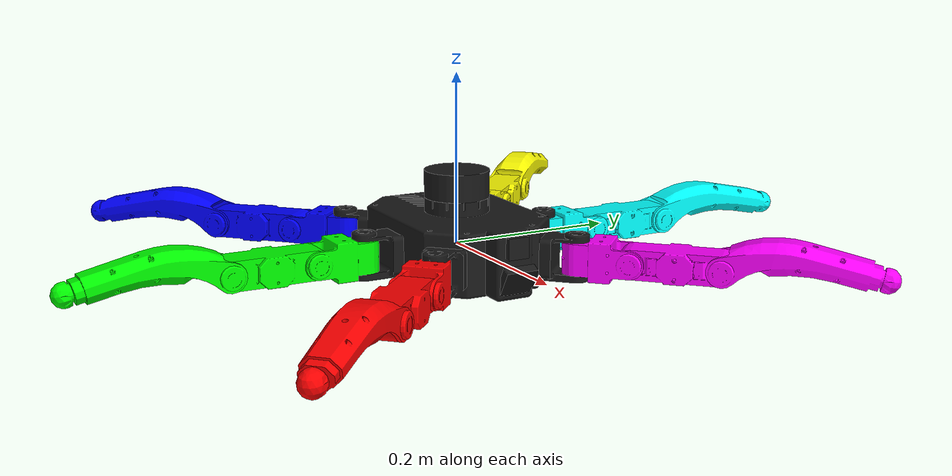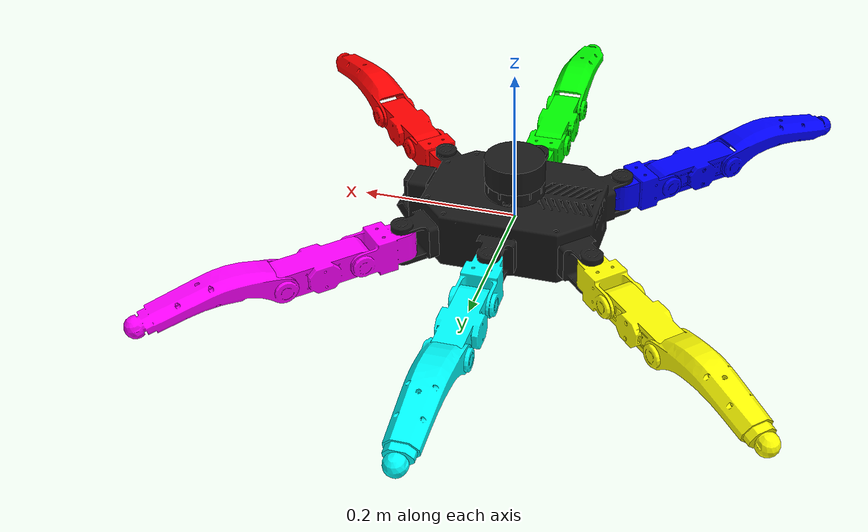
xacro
<robot xmlns:xacro="http://ros.org/wiki/xacro" name="hexapod">

  <xacro:arg name="controllers_file" default=""/>
  <!-- Waveshare ST3215 at 12 V: 2.94 N·m stall torque, 0.222 s/60° no-load speed -->
  <xacro:property name="servo_effort" value="2.94"/>
  <xacro:property name="servo_velocity" value="4.7"/>
  <!-- Femur range from the CAD meshes: raising it hits the coxa bracket at -100 deg, lowering it
       with the knee folded puts the tibia into the body at +86 deg. Both ~10 deg inside contact. -->
  <xacro:property name="femur_lower" value="-1.6"/>
  <xacro:property name="femur_upper" value="1.4"/>
  <xacro:property name="tibia_lower" value="-0.78"/>
  <xacro:property name="tibia_upper" value="2.63"/>
  <xacro:arg name="front_depth_width" default="640"/>
  <xacro:arg name="front_depth_height" default="480"/>
  <xacro:arg name="front_depth_rate" default="8"/>

  <!-- ================= CONSTANTS ================= -->
  <!-- Hexapod_V6.1, as in hexapod.urdf.xacro (base_link on the hip plane) -->
  <xacro:property name="coxa_length" value="0.063"/>
  <xacro:property name="femur_length" value="0.1"/>
  <!-- Straight line from the knee to the bottom of the foot; the real tibia curves outwards -->
  <xacro:property name="tibia_length" value="0.186"/>
  <xacro:property name="middle_leg_y" value="0.11836"/>
  <xacro:property name="corner_leg_x" value="0.11916"/>
  <xacro:property name="corner_leg_y" value="0.08952"/>

  <!-- Body 220 mm long and 161 mm wide, 72 mm tall with the lid, its base 33.85 mm below the hips -->
  <xacro:property name="body_length" value="0.22"/>
  <xacro:property name="body_width" value="0.161"/>
  <xacro:property name="body_height" value="0.072"/>
  <xacro:property name="body_z" value="${body_height / 2 - 0.03385}"/>

  <xacro:property name="coxa_width" value="0.054"/>
  <xacro:property name="coxa_height" value="0.045"/>

  <xacro:property name="femur_radius" value="0.025"/>
  <xacro:property name="tibia_radius" value="0.017"/>

  <xacro:property name="cscale" value="0.95"/>

  <!-- Visuals are the real robot's meshes (as in hexapod.urdf.xacro); collisions stay simple shapes -->
  <xacro:property name="mesh_scale" value="0.001 0.001 0.001"/>

  <!-- Rubber foot at the tibia tip; its bottom sits at tibia_length so the IK leg length is unchanged -->
  <xacro:property name="foot_radius" value="0.014"/>
  <xacro:property name="foot_friction" value="1.5"/>

  <!-- Masses and inertias from the CAD (scripts/mass_properties.py) -->
  <xacro:include filename="$(find hexapod_description)/urdf/hexapod.inertials.xacro"/>

  <!-- ================= MATERIALS ================= -->
  <material name="black"><color rgba="0.1 0.1 0.1 1"/></material>
  <material name="red"><color rgba="1 0 0 1"/></material>
  <material name="green"><color rgba="0 1 0 1"/></material>
  <material name="blue"><color rgba="0 0 1 1"/></material>
  <material name="yellow"><color rgba="1 1 0 1"/></material>
  <material name="cyan"><color rgba="0 1 1 1"/></material>
  <material name="magenta"><color rgba="1 0 1 1"/></material>

  <!-- ================= BASE ================= -->
  <link name="base_link">
    <visual>
      <geometry>
        <mesh filename="package://hexapod_description/meshes/body.stl" scale="${mesh_scale}"/>
      </geometry>
      <material name="black"/>
    </visual>
    <collision>
      <origin xyz="0 0 ${body_z}"/>
      <geometry>
        <box size="${body_length} ${body_width} ${body_height}"/>
      </geometry>
    </collision>
    <xacro:hexapod_base_inertial/>
  </link>

<!-- ================= LEG LINKS ================= -->
<!-- side: left or right, the left legs being mirror images of the right -->
<xacro:macro name="leg" params="name side x_offset y_offset yaw colour">

  <!-- COXA -->
  <link name="${name}_coxa">
    <visual>
      <geometry>
        <mesh filename="package://hexapod_description/meshes/coxa_${side}.stl" scale="${mesh_scale}"/>
      </geometry>
      <material name="${colour}"/>
    </visual>
    <collision>
      <origin xyz="${coxa_length/2} 0 0" rpy="0 0 0"/>
      <geometry>
        <box size="${coxa_length*cscale} ${coxa_width*cscale} ${coxa_height*cscale}"/>
      </geometry>
    </collision>
    <xacro:hexapod_leg_inertial link="coxa" side="${side}"/>
  </link>

  <!-- FEMUR -->
  <link name="${name}_femur">
    <visual>
      <geometry>
        <mesh filename="package://hexapod_description/meshes/femur_${side}.stl" scale="${mesh_scale}"/>
      </geometry>
      <material name="${colour}"/>
    </visual>
    <collision>
      <origin xyz="${femur_length/2} 0 0" rpy="0 -1.5708 0"/>
      <geometry>
        <cylinder length="${femur_length*cscale}" radius="${femur_radius*cscale}"/>
      </geometry>
    </collision>
    <xacro:hexapod_leg_inertial link="femur" side="${side}"/>
  </link>

  <!-- TIBIA -->
  <link name="${name}_tibia">
    <visual>
      <geometry>
        <mesh filename="package://hexapod_description/meshes/tibia_${side}.stl" scale="${mesh_scale}"/>
      </geometry>
      <material name="${colour}"/>
    </visual>
    <!-- Foot sphere. Left unnamed: the URDF converter only applies mu1/mu2 to collisions named after the link -->
    <collision>
      <origin xyz="${tibia_length - foot_radius} 0 0"/>
      <geometry>
        <sphere radius="${foot_radius}"/>
      </geometry>
    </collision>
    <collision>
      <origin xyz="${tibia_length/2} 0 0" rpy="0 -1.5708 0"/>
      <geometry>
        <cylinder length="${tibia_length*cscale}" radius="${tibia_radius*cscale}"/>
      </geometry>
    </collision>
    <xacro:hexapod_leg_inertial link="tibia" side="${side}"/>
  </link>

  <gazebo reference="${name}_tibia">
    <mu1>${foot_friction}</mu1>
    <mu2>${foot_friction}</mu2>
  </gazebo>

  <!-- COXA JOINT -->
  <joint name="${name}_coxa_joint" type="revolute">
    <parent link="base_link"/>
    <child link="${name}_coxa"/>
    <origin xyz="${x_offset} ${y_offset} 0" rpy="0 0 ${yaw}"/>
    <axis xyz="0 0 1"/>
    <limit lower="-1.57" upper="1.57" effort="${servo_effort}" velocity="${servo_velocity}"/>
  </joint>

  <!-- FEMUR JOINT -->
  <joint name="${name}_femur_joint" type="revolute">
    <parent link="${name}_coxa"/>
    <child link="${name}_femur"/>
    <origin xyz="${coxa_length} 0 0" rpy="0 0 0"/>
    <axis xyz="0 1 0"/>
    <limit lower="${femur_lower}" upper="${femur_upper}" effort="${servo_effort}" velocity="${servo_velocity}"/>
  </joint>

  <!-- TIBIA JOINT -->
  <joint name="${name}_tibia_joint" type="revolute">
    <parent link="${name}_femur"/>
    <child link="${name}_tibia"/>
    <origin xyz="${femur_length} 0 0" rpy="0 0 0"/>  <!-- 0: in line with the femur -->
    <axis xyz="0 1 0"/>
    <limit lower="${tibia_lower}" upper="${tibia_upper}" effort="${servo_effort}" velocity="${servo_velocity}"/>
  </joint>

  <!-- COXA TRANSMISSION -->
  <transmission name="${name}_coxa_trans">
    <type>transmission_interface/SimpleTransmission</type>
    <joint name="${name}_coxa_joint">
      <hardwareInterface>PositionJointInterface</hardwareInterface>
    </joint>
    <actuator name="${name}_coxa_motor">
      <hardwareInterface>PositionJointInterface</hardwareInterface>
      <mechanicalReduction>1</mechanicalReduction>
    </actuator>
  </transmission>

  <!-- FEMUR TRANSMISSION -->
  <transmission name="${name}_femur_trans">
    <type>transmission_interface/SimpleTransmission</type>
    <joint name="${name}_femur_joint">
      <hardwareInterface>PositionJointInterface</hardwareInterface>
    </joint>
    <actuator name="${name}_femur_motor">
      <hardwareInterface>PositionJointInterface</hardwareInterface>
      <mechanicalReduction>1</mechanicalReduction>
    </actuator>
  </transmission>

  <!-- TIBIA TRANSMISSION -->
  <transmission name="${name}_tibia_trans">
    <type>transmission_interface/SimpleTransmission</type>
    <joint name="${name}_tibia_joint">
      <hardwareInterface>PositionJointInterface</hardwareInterface>
    </joint>
    <actuator name="${name}_tibia_motor">
      <hardwareInterface>PositionJointInterface</hardwareInterface>
      <mechanicalReduction>1</mechanicalReduction>
    </actuator>
  </transmission>

</xacro:macro>

  <!-- ================= LEGS ================= -->
  <!-- Body frame follows REP 103: +x forward, +y left, +z up -->

  <!-- Front right -->
  <xacro:leg name="leg1" side="right" x_offset="${corner_leg_x}" y_offset="${-corner_leg_y}" yaw="${-pi / 4}" colour="red"/>

  <!-- Middle right -->
  <xacro:leg name="leg2" side="right" x_offset="0" y_offset="${-middle_leg_y}" yaw="${-pi / 2}" colour="green"/>

  <!-- Rear right -->
  <xacro:leg name="leg3" side="right" x_offset="${-corner_leg_x}" y_offset="${-corner_leg_y}" yaw="${-3 * pi / 4}" colour="blue"/>

  <!-- Rear left -->
  <xacro:leg name="leg4" side="left" x_offset="${-corner_leg_x}" y_offset="${corner_leg_y}" yaw="${3 * pi / 4}" colour="yellow"/>

  <!-- Middle left -->
  <xacro:leg name="leg5" side="left" x_offset="0" y_offset="${middle_leg_y}" yaw="${pi / 2}" colour="cyan"/>

  <!-- Front left -->
  <xacro:leg name="leg6" side="left" x_offset="${corner_leg_x}" y_offset="${corner_leg_y}" yaw="${pi / 4}" colour="magenta"/>

  <!-- ================= SENSORS ================= -->

  <gazebo reference="camera_link">
  <sensor name="camera" type="camera">
    <always_on>true</always_on>
    <update_rate>15</update_rate>
    <camera>
      <horizontal_fov>1.152</horizontal_fov>  <!-- Pi Camera Module 3 standard lens: 66 deg -->
      <image>
        <width>640</width>
        <height>360</height>
        <format>R8G8B8</format>
      </image>
      <clip>
        <near>0.01</near>
        <far>100</far>
      </clip>
    </camera>
    <topic>/camera/image</topic>
    <gz_frame_id>camera_link</gz_frame_id>
  </sensor>
</gazebo>

<gazebo reference="front_depth_camera_link">
  <sensor name="front_depth_camera" type="depth_camera">
    <always_on>true</always_on>
    <update_rate>$(arg front_depth_rate)</update_rate>
    <camera>
      <horizontal_fov>1.021</horizontal_fov>  <!-- Arducam ToF: 70 deg diagonal = 58.5 deg horizontal -->
      <image>
        <width>$(arg front_depth_width)</width>
        <height>$(arg front_depth_height)</height>
        <format>R8G8B8</format>
      </image>
      <clip>
        <near>0.1</near>
        <far>4.0</far>    <!-- far mode -->
      </clip>
    </camera>
    <topic>/front_depth</topic>
    <gz_frame_id>front_depth_camera_link</gz_frame_id>
  </sensor>
</gazebo>

<link name="imu_link">
  <visual>
    <geometry><box size="0.015 0.015 0.005"/></geometry>
    <material name="green"/>
  </visual>
  <collision>
    <geometry><box size="0.015 0.015 0.005"/></geometry>
  </collision>
  <!-- Its mass is in base_link's inertial (hexapod.inertials.xacro); fixed joints are merged into base_link -->
  <inertial>
    <mass value="0.001"/>
    <inertia ixx="1e-8" ixy="0" ixz="0" iyy="1e-8" iyz="0" izz="1e-8"/>
  </inertial>
</link>

<joint name="imu_joint" type="fixed">
  <parent link="base_link"/>
  <child link="imu_link"/>
  <origin xyz="0.0 0.0 0.03" rpy="0 0 0"/>
</joint>

<gazebo reference="imu_link">
  <sensor name="imu_sensor" type="imu">
    <always_on>true</always_on>
    <update_rate>1000</update_rate>
    <topic>/imu</topic>
    <gz_frame_id>imu_link</gz_frame_id>
    <imu>
      <angular_velocity>
        <x><noise type="gaussian"><mean>0.0</mean><stddev>0.002</stddev></noise></x>
        <y><noise type="gaussian"><mean>0.0</mean><stddev>0.002</stddev></noise></y>
        <z><noise type="gaussian"><mean>0.0</mean><stddev>0.002</stddev></noise></z>
      </angular_velocity>
      <linear_acceleration>
        <x><noise type="gaussian"><mean>0.0</mean><stddev>0.02</stddev></noise></x>
        <y><noise type="gaussian"><mean>0.0</mean><stddev>0.02</stddev></noise></y>
        <z><noise type="gaussian"><mean>0.0</mean><stddev>0.02</stddev></noise></z>
      </linear_acceleration>
    </imu>
  </sensor>
</gazebo>

<gazebo reference="imu_link">
  <sensor name="mag_sensor" type="magnetometer">
    <always_on>true</always_on>
    <update_rate>50</update_rate>
    <topic>/imu/mag</topic>
    <gz_frame_id>imu_link</gz_frame_id>
  </sensor>
</gazebo>

<xacro:include filename="$(find hexapod_description)/urdf/hexapod.lidar.xacro"/>
<xacro:hexapod_lidar/>
<xacro:include filename="$(find hexapod_description)/urdf/hexapod.cameras.xacro"/>
<xacro:hexapod_cameras/>

<gazebo reference="lidar_link">
  <sensor name="lidar" type="gpu_lidar">
    <always_on>true</always_on>
    <!-- RPLIDAR A2M12: 10 Hz, 16 kHz sampling (0.225 deg steps), 0.2-12 m -->
    <update_rate>10</update_rate>
    <lidar>
      <scan>
        <horizontal>
          <samples>1600</samples>
          <resolution>1</resolution>
          <min_angle>-3.14159</min_angle>
          <max_angle>3.14159</max_angle>
        </horizontal>
        <vertical>
          <samples>1</samples>        <!-- 1 = 2D lidar, increase for 3D -->
          <min_angle>0</min_angle>
          <max_angle>0</max_angle>
        </vertical>
      </scan>
      <range>
        <min>0.2</min>
        <max>12.0</max>
        <resolution>0.01</resolution>
      </range>
      <noise>
        <type>gaussian</type>
        <mean>0.0</mean>
        <stddev>0.01</stddev>
      </noise>
    </lidar>
    <topic>/lidar/scan</topic>
    <gz_frame_id>lidar_link</gz_frame_id>
  </sensor>
</gazebo>

  <!-- ================= ROS2 CONTROL ================= -->
  <xacro:include filename="$(find hexapod_description)/urdf/hexapod.ros2_control.xacro"/>
  <xacro:hexapod_ros2_control hardware="gazebo"/>

  <gazebo>
    <plugin name="gz_ros2_control::GazeboSimROS2ControlPlugin" filename="libgz_ros2_control-system.so">
      <parameters>$(arg controllers_file)</parameters>
    </plugin>
  </gazebo>

  <!-- The robot's true pose, for scoring test runs (scenario_runner.py) against odometry -->
  <gazebo>
    <plugin name="gz::sim::systems::OdometryPublisher" filename="gz-sim-odometry-publisher-system">
      <odom_frame>world</odom_frame>
      <robot_base_frame>base_link</robot_base_frame>
      <odom_topic>/ground_truth/odom</odom_topic>
      <tf_topic>/ground_truth/tf</tf_topic>
      <dimensions>3</dimensions>
      <odom_publish_frequency>50</odom_publish_frequency>
    </plugin>
  </gazebo>

</robot>

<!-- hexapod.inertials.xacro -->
<!-- Generated by scripts/mass_properties.py from Hexapod_V6.1.step, edit that instead.
     Whole robot 3.323 kg. Printed parts are at 60% of solid until weighed. -->
<robot xmlns:xacro="http://ros.org/wiki/xacro">

  <xacro:macro name="hexapod_base_inertial">
    <inertial>
      <mass value="1.1082"/>
      <origin xyz="-0.00433 0.00009 0.00993"/>
      <inertia ixx="3.4133e-03" ixy="-1.1081e-06" ixz="-5.7272e-05" iyy="5.8450e-03" iyz="6.0138e-08" izz="7.2937e-03"/>
    </inertial>
  </xacro:macro>

  <!-- link: coxa, femur or tibia; side: left or right -->
  <xacro:macro name="hexapod_leg_inertial" params="link side">
    <xacro:if value="${link == 'coxa' and side == 'left'}">
      <inertial>
        <mass value="0.0934"/>
        <origin xyz="0.02018 0.00006 -0.00074"/>
        <inertia ixx="2.3501e-05" ixy="6.6404e-10" ixz="3.6137e-07" iyy="4.3357e-05" iyz="1.7523e-08" izz="4.4608e-05"/>
      </inertial>
    </xacro:if>
    <xacro:if value="${link == 'coxa' and side == 'right'}">
      <inertial>
        <mass value="0.0934"/>
        <origin xyz="0.02018 -0.00006 -0.00074"/>
        <inertia ixx="2.3501e-05" ixy="-6.6404e-10" ixz="3.6137e-07" iyy="4.3357e-05" iyz="-1.7523e-08" izz="4.4608e-05"/>
      </inertial>
    </xacro:if>
    <xacro:if value="${link == 'femur' and side == 'left'}">
      <inertial>
        <mass value="0.1724"/>
        <origin xyz="0.05000 0.00002 -0.00000"/>
        <inertia ixx="3.3923e-05" ixy="-4.3970e-14" ixz="-4.0729e-07" iyy="2.3291e-04" iyz="-2.4257e-14" izz="2.4153e-04"/>
      </inertial>
    </xacro:if>
    <xacro:if value="${link == 'femur' and side == 'right'}">
      <inertial>
        <mass value="0.1724"/>
        <origin xyz="0.05000 -0.00002 -0.00000"/>
        <inertia ixx="3.3923e-05" ixy="4.3970e-14" ixz="-4.0729e-07" iyy="2.3291e-04" iyz="2.4257e-14" izz="2.4153e-04"/>
      </inertial>
    </xacro:if>
    <xacro:if value="${link == 'tibia' and side == 'left'}">
      <inertial>
        <mass value="0.1034"/>
        <origin xyz="0.07831 -0.00000 0.01279"/>
        <inertia ixx="2.7891e-05" ixy="4.6243e-10" ixz="1.3841e-05" iyy="2.3494e-04" iyz="-2.0572e-10" izz="2.3960e-04"/>
      </inertial>
    </xacro:if>
    <xacro:if value="${link == 'tibia' and side == 'right'}">
      <inertial>
        <mass value="0.1034"/>
        <origin xyz="0.07831 0.00000 0.01279"/>
        <inertia ixx="2.7891e-05" ixy="-4.6243e-10" ixz="1.3841e-05" iyy="2.3494e-04" iyz="2.0572e-10" izz="2.3960e-04"/>
      </inertial>
    </xacro:if>
  </xacro:macro>

</robot>

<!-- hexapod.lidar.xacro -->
<robot xmlns:xacro="http://ros.org/wiki/xacro">

  <!--
    RPLIDAR A2M12 mount, shared by the real and Gazebo models so they stay in the same place.
    Placed as on the V6.1 body (Hexapod_V6.1.step).
  -->
  <xacro:property name="lidar_x" value="0.0"/>
  <xacro:property name="lidar_y" value="0.0"/>
  <xacro:property name="lidar_z" value="0.067"/>
  <xacro:property name="lidar_radius" value="0.038"/>
  <xacro:property name="lidar_height" value="0.041"/>

  <xacro:macro name="hexapod_lidar">
    <link name="lidar_link">
      <visual>
        <geometry><cylinder length="${lidar_height}" radius="${lidar_radius}"/></geometry>
        <material name="black"/>
      </visual>
      <collision>
        <geometry><cylinder length="${lidar_height}" radius="${lidar_radius}"/></geometry>
      </collision>
      <!-- Its mass is in base_link's inertial (hexapod.inertials.xacro); fixed joints are merged into base_link -->
      <inertial>
        <mass value="0.001"/>
        <inertia ixx="1e-8" ixy="0" ixz="0" iyy="1e-8" iyz="0" izz="1e-8"/>
      </inertial>
    </link>

    <joint name="lidar_joint" type="fixed">
      <parent link="base_link"/>
      <child link="lidar_link"/>
      <origin xyz="${lidar_x} ${lidar_y} ${lidar_z}" rpy="0 0 0"/>
    </joint>
  </xacro:macro>

</robot>

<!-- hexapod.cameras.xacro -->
<robot xmlns:xacro="http://ros.org/wiki/xacro">

  <xacro:property name="camera_x" value="0.138"/>        <!-- front of the camera pod -->
  <xacro:property name="tof_z" value="-0.0124"/>
  <xacro:property name="tof_pitch" value="${radians(30)}"/>
  <xacro:property name="picam_z" value="0.0257"/>
  <xacro:property name="picam_pitch" value="0.0"/>

  <xacro:macro name="hexapod_cameras">
    <link name="front_depth_camera_link">
      <visual>
        <geometry><box size="0.01 0.038 0.038"/></geometry>
        <material name="black"/>
      </visual>
      <collision>
        <geometry><box size="0.01 0.038 0.038"/></geometry>
      </collision>
      <!-- Its mass is in base_link's inertial (hexapod.inertials.xacro); fixed joints are merged into base_link -->
      <inertial>
        <mass value="0.001"/>
        <inertia ixx="1e-8" ixy="0" ixz="0" iyy="1e-8" iyz="0" izz="1e-8"/>
      </inertial>
    </link>
    <joint name="front_depth_camera_joint" type="fixed">
      <parent link="base_link"/>
      <child link="front_depth_camera_link"/>
      <origin xyz="${camera_x} 0 ${tof_z}" rpy="0 ${tof_pitch} 0"/>
    </joint>

    <link name="camera_link">
      <visual>
        <geometry><box size="0.01 0.025 0.024"/></geometry>
        <material name="black"/>
      </visual>
      <collision>
        <geometry><box size="0.01 0.025 0.024"/></geometry>
      </collision>
      <!-- Its mass is in base_link's inertial (hexapod.inertials.xacro); fixed joints are merged into base_link -->
      <inertial>
        <mass value="0.001"/>
        <inertia ixx="1e-8" ixy="0" ixz="0" iyy="1e-8" iyz="0" izz="1e-8"/>
      </inertial>
    </link>
    <joint name="camera_joint" type="fixed">
      <parent link="base_link"/>
      <child link="camera_link"/>
      <origin xyz="${camera_x} 0 ${picam_z}" rpy="0 ${picam_pitch} 0"/>
    </joint>
  </xacro:macro>

</robot>
